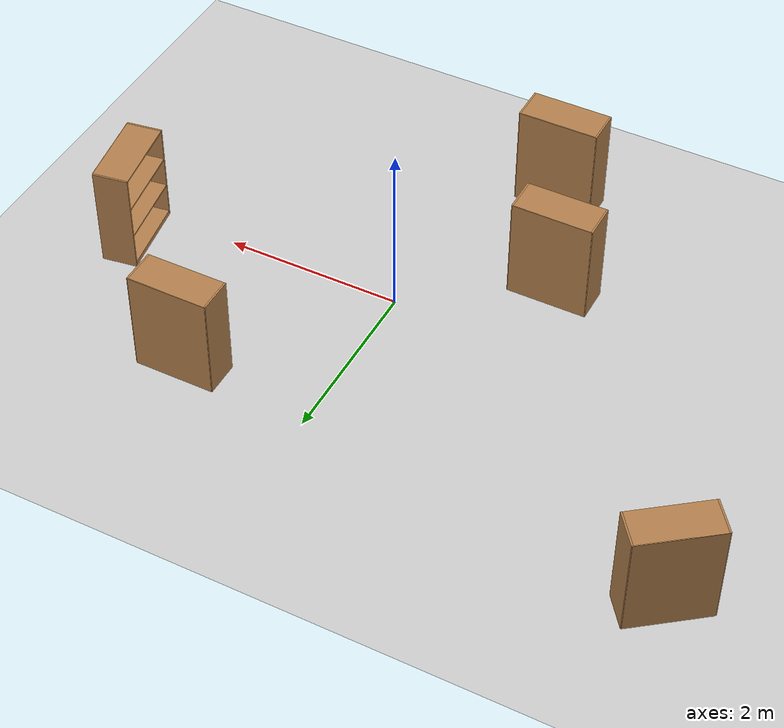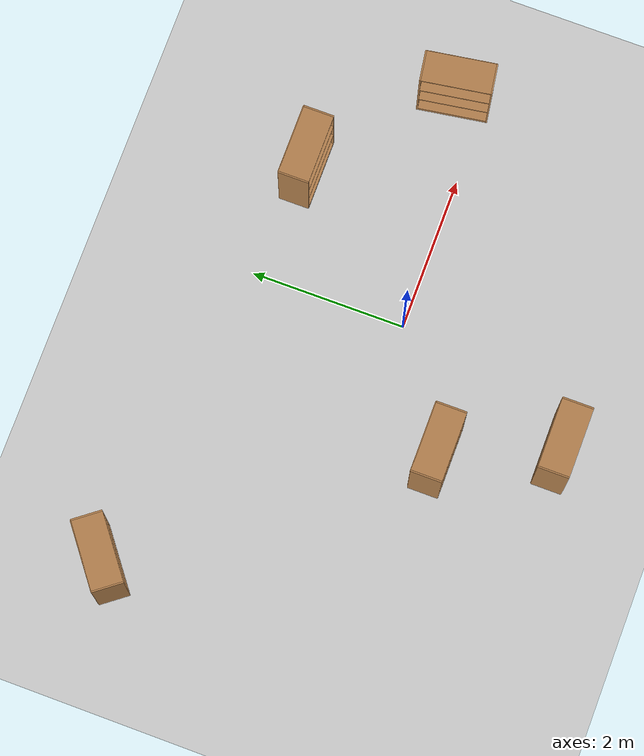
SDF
<sdf version="1.7">
 <world name="default">
  <include><uri>model://ground_plane</uri></include>
  <include><uri>model://sun</uri></include>
  <model name="bookshelf">
   <static>1</static>
   <link name="link">
    <inertial><mass>1</mass></inertial>
    <collision name="back">
     <pose>0 0.005 0.6 0 -0 0</pose>
     <geometry><box><size>0.9 0.01 1.2</size></box></geometry>
    </collision>
    <visual name="visual1">
     <pose>0 0.005 0.6 0 -0 0</pose>
     <geometry><box><size>0.9 0.01 1.2</size></box></geometry>
     <material>
      <script><uri>file://media/materials/scripts/gazebo.material</uri><name>Gazebo/Wood</name></script>
     </material>
    </visual>
    <collision name="left_side">
     <pose>0.45 -0.195 0.6 0 -0 0</pose>
     <geometry><box><size>0.02 0.4 1.2</size></box></geometry>
    </collision>
    <visual name="visual2">
     <pose>0.45 -0.195 0.6 0 -0 0</pose>
     <geometry><box><size>0.02 0.4 1.2</size></box></geometry>
     <material>
      <script><uri>file://media/materials/scripts/gazebo.material</uri><name>Gazebo/Wood</name></script>
     </material>
    </visual>
    <collision name="right_side">
     <pose>-0.45 -0.195 0.6 0 -0 0</pose>
     <geometry><box><size>0.02 0.4 1.2</size></box></geometry>
    </collision>
    <visual name="visual3">
     <pose>-0.45 -0.195 0.6 0 -0 0</pose>
     <geometry><box><size>0.02 0.4 1.2</size></box></geometry>
     <material>
      <script><uri>file://media/materials/scripts/gazebo.material</uri><name>Gazebo/Wood</name></script>
     </material>
    </visual>
    <collision name="bottom">
     <pose>0 -0.195 0.03 0 -0 0</pose>
     <geometry><box><size>0.88 0.4 0.06</size></box></geometry>
    </collision>
    <visual name="visual4">
     <pose>0 -0.195 0.03 0 -0 0</pose>
     <geometry><box><size>0.88 0.4 0.06</size></box></geometry>
     <material>
      <script><uri>file://media/materials/scripts/gazebo.material</uri><name>Gazebo/Wood</name></script>
     </material>
    </visual>
    <collision name="top">
     <pose>0 -0.195 1.19 0 -0 0</pose>
     <geometry><box><size>0.88 0.4 0.02</size></box></geometry>
    </collision>
    <visual name="visual5">
     <pose>0 -0.195 1.19 0 -0 0</pose>
     <geometry><box><size>0.88 0.4 0.02</size></box></geometry>
     <material>
      <script><uri>file://media/materials/scripts/gazebo.material</uri><name>Gazebo/Wood</name></script>
     </material>
    </visual>
    <collision name="low_shelf">
     <pose>0 -0.195 0.43 0 -0 0</pose>
     <geometry><box><size>0.88 0.4 0.02</size></box></geometry>
    </collision>
    <visual name="visual6">
     <pose>0 -0.195 0.43 0 -0 0</pose>
     <geometry><box><size>0.88 0.4 0.02</size></box></geometry>
     <material>
      <script><uri>file://media/materials/scripts/gazebo.material</uri><name>Gazebo/Wood</name></script>
     </material>
    </visual>
    <collision name="high_shelf">
     <pose>0 -0.195 0.8 0 -0 0</pose>
     <geometry><box><size>0.88 0.4 0.02</size></box></geometry>
    </collision>
    <visual name="visual7">
     <pose>0 -0.195 0.8 0 -0 0</pose>
     <geometry><box><size>0.88 0.4 0.02</size></box></geometry>
     <material>
      <script><uri>file://media/materials/scripts/gazebo.material</uri><name>Gazebo/Wood</name></script>
     </material>
    </visual>
   </link>
   <pose>3.20452 0.423142 0 0 0 -1.41662</pose>
  </model>
  <model name="bookshelf_0">
   <static>1</static>
   <link name="link">
    <inertial><mass>1</mass></inertial>
    <collision name="back">
     <pose>0 0.005 0.6 0 -0 0</pose>
     <geometry><box><size>0.9 0.01 1.2</size></box></geometry>
    </collision>
    <visual name="visual1">
     <pose>0 0.005 0.6 0 -0 0</pose>
     <geometry><box><size>0.9 0.01 1.2</size></box></geometry>
     <material>
      <script><uri>file://media/materials/scripts/gazebo.material</uri><name>Gazebo/Wood</name></script>
     </material>
    </visual>
    <collision name="left_side">
     <pose>0.45 -0.195 0.6 0 -0 0</pose>
     <geometry><box><size>0.02 0.4 1.2</size></box></geometry>
    </collision>
    <visual name="visual2">
     <pose>0.45 -0.195 0.6 0 -0 0</pose>
     <geometry><box><size>0.02 0.4 1.2</size></box></geometry>
     <material>
      <script><uri>file://media/materials/scripts/gazebo.material</uri><name>Gazebo/Wood</name></script>
     </material>
    </visual>
    <collision name="right_side">
     <pose>-0.45 -0.195 0.6 0 -0 0</pose>
     <geometry><box><size>0.02 0.4 1.2</size></box></geometry>
    </collision>
    <visual name="visual3">
     <pose>-0.45 -0.195 0.6 0 -0 0</pose>
     <geometry><box><size>0.02 0.4 1.2</size></box></geometry>
     <material>
      <script><uri>file://media/materials/scripts/gazebo.material</uri><name>Gazebo/Wood</name></script>
     </material>
    </visual>
    <collision name="bottom">
     <pose>0 -0.195 0.03 0 -0 0</pose>
     <geometry><box><size>0.88 0.4 0.06</size></box></geometry>
    </collision>
    <visual name="visual4">
     <pose>0 -0.195 0.03 0 -0 0</pose>
     <geometry><box><size>0.88 0.4 0.06</size></box></geometry>
     <material>
      <script><uri>file://media/materials/scripts/gazebo.material</uri><name>Gazebo/Wood</name></script>
     </material>
    </visual>
    <collision name="top">
     <pose>0 -0.195 1.19 0 -0 0</pose>
     <geometry><box><size>0.88 0.4 0.02</size></box></geometry>
    </collision>
    <visual name="visual5">
     <pose>0 -0.195 1.19 0 -0 0</pose>
     <geometry><box><size>0.88 0.4 0.02</size></box></geometry>
     <material>
      <script><uri>file://media/materials/scripts/gazebo.material</uri><name>Gazebo/Wood</name></script>
     </material>
    </visual>
    <collision name="low_shelf">
     <pose>0 -0.195 0.43 0 -0 0</pose>
     <geometry><box><size>0.88 0.4 0.02</size></box></geometry>
    </collision>
    <visual name="visual6">
     <pose>0 -0.195 0.43 0 -0 0</pose>
     <geometry><box><size>0.88 0.4 0.02</size></box></geometry>
     <material>
      <script><uri>file://media/materials/scripts/gazebo.material</uri><name>Gazebo/Wood</name></script>
     </material>
    </visual>
    <collision name="high_shelf">
     <pose>0 -0.195 0.8 0 -0 0</pose>
     <geometry><box><size>0.88 0.4 0.02</size></box></geometry>
    </collision>
    <visual name="visual7">
     <pose>0 -0.195 0.8 0 -0 0</pose>
     <geometry><box><size>0.88 0.4 0.02</size></box></geometry>
     <material>
      <script><uri>file://media/materials/scripts/gazebo.material</uri><name>Gazebo/Wood</name></script>
     </material>
    </visual>
   </link>
   <pose>-4.20969 2.57873 0 0 -0 0.653414</pose>
  </model>
  <model name="bookshelf_1">
   <static>1</static>
   <link name="link">
    <inertial><mass>1</mass></inertial>
    <collision name="back">
     <pose>0 0.005 0.6 0 -0 0</pose>
     <geometry><box><size>0.9 0.01 1.2</size></box></geometry>
    </collision>
    <visual name="visual1">
     <pose>0 0.005 0.6 0 -0 0</pose>
     <geometry><box><size>0.9 0.01 1.2</size></box></geometry>
     <material>
      <script><uri>file://media/materials/scripts/gazebo.material</uri><name>Gazebo/Wood</name></script>
     </material>
    </visual>
    <collision name="left_side">
     <pose>0.45 -0.195 0.6 0 -0 0</pose>
     <geometry><box><size>0.02 0.4 1.2</size></box></geometry>
    </collision>
    <visual name="visual2">
     <pose>0.45 -0.195 0.6 0 -0 0</pose>
     <geometry><box><size>0.02 0.4 1.2</size></box></geometry>
     <material>
      <script><uri>file://media/materials/scripts/gazebo.material</uri><name>Gazebo/Wood</name></script>
     </material>
    </visual>
    <collision name="right_side">
     <pose>-0.45 -0.195 0.6 0 -0 0</pose>
     <geometry><box><size>0.02 0.4 1.2</size></box></geometry>
    </collision>
    <visual name="visual3">
     <pose>-0.45 -0.195 0.6 0 -0 0</pose>
     <geometry><box><size>0.02 0.4 1.2</size></box></geometry>
     <material>
      <script><uri>file://media/materials/scripts/gazebo.material</uri><name>Gazebo/Wood</name></script>
     </material>
    </visual>
    <collision name="bottom">
     <pose>0 -0.195 0.03 0 -0 0</pose>
     <geometry><box><size>0.88 0.4 0.06</size></box></geometry>
    </collision>
    <visual name="visual4">
     <pose>0 -0.195 0.03 0 -0 0</pose>
     <geometry><box><size>0.88 0.4 0.06</size></box></geometry>
     <material>
      <script><uri>file://media/materials/scripts/gazebo.material</uri><name>Gazebo/Wood</name></script>
     </material>
    </visual>
    <collision name="top">
     <pose>0 -0.195 1.19 0 -0 0</pose>
     <geometry><box><size>0.88 0.4 0.02</size></box></geometry>
    </collision>
    <visual name="visual5">
     <pose>0 -0.195 1.19 0 -0 0</pose>
     <geometry><box><size>0.88 0.4 0.02</size></box></geometry>
     <material>
      <script><uri>file://media/materials/scripts/gazebo.material</uri><name>Gazebo/Wood</name></script>
     </material>
    </visual>
    <collision name="low_shelf">
     <pose>0 -0.195 0.43 0 -0 0</pose>
     <geometry><box><size>0.88 0.4 0.02</size></box></geometry>
    </collision>
    <visual name="visual6">
     <pose>0 -0.195 0.43 0 -0 0</pose>
     <geometry><box><size>0.88 0.4 0.02</size></box></geometry>
     <material>
      <script><uri>file://media/materials/scripts/gazebo.material</uri><name>Gazebo/Wood</name></script>
     </material>
    </visual>
    <collision name="high_shelf">
     <pose>0 -0.195 0.8 0 -0 0</pose>
     <geometry><box><size>0.88 0.4 0.02</size></box></geometry>
    </collision>
    <visual name="visual7">
     <pose>0 -0.195 0.8 0 -0 0</pose>
     <geometry><box><size>0.88 0.4 0.02</size></box></geometry>
     <material>
      <script><uri>file://media/materials/scripts/gazebo.material</uri><name>Gazebo/Wood</name></script>
     </material>
    </visual>
   </link>
   <pose>-0.858298 -2.16409 0 0 -0 0</pose>
  </model>
  <model name="bookshelf_2">
   <static>1</static>
   <link name="link">
    <inertial><mass>1</mass></inertial>
    <collision name="back">
     <pose>0 0.005 0.6 0 -0 0</pose>
     <geometry><box><size>0.9 0.01 1.2</size></box></geometry>
    </collision>
    <visual name="visual1">
     <pose>0 0.005 0.6 0 -0 0</pose>
     <geometry><box><size>0.9 0.01 1.2</size></box></geometry>
     <material>
      <script><uri>file://media/materials/scripts/gazebo.material</uri><name>Gazebo/Wood</name></script>
     </material>
    </visual>
    <collision name="left_side">
     <pose>0.45 -0.195 0.6 0 -0 0</pose>
     <geometry><box><size>0.02 0.4 1.2</size></box></geometry>
    </collision>
    <visual name="visual2">
     <pose>0.45 -0.195 0.6 0 -0 0</pose>
     <geometry><box><size>0.02 0.4 1.2</size></box></geometry>
     <material>
      <script><uri>file://media/materials/scripts/gazebo.material</uri><name>Gazebo/Wood</name></script>
     </material>
    </visual>
    <collision name="right_side">
     <pose>-0.45 -0.195 0.6 0 -0 0</pose>
     <geometry><box><size>0.02 0.4 1.2</size></box></geometry>
    </collision>
    <visual name="visual3">
     <pose>-0.45 -0.195 0.6 0 -0 0</pose>
     <geometry><box><size>0.02 0.4 1.2</size></box></geometry>
     <material>
      <script><uri>file://media/materials/scripts/gazebo.material</uri><name>Gazebo/Wood</name></script>
     </material>
    </visual>
    <collision name="bottom">
     <pose>0 -0.195 0.03 0 -0 0</pose>
     <geometry><box><size>0.88 0.4 0.06</size></box></geometry>
    </collision>
    <visual name="visual4">
     <pose>0 -0.195 0.03 0 -0 0</pose>
     <geometry><box><size>0.88 0.4 0.06</size></box></geometry>
     <material>
      <script><uri>file://media/materials/scripts/gazebo.material</uri><name>Gazebo/Wood</name></script>
     </material>
    </visual>
    <collision name="top">
     <pose>0 -0.195 1.19 0 -0 0</pose>
     <geometry><box><size>0.88 0.4 0.02</size></box></geometry>
    </collision>
    <visual name="visual5">
     <pose>0 -0.195 1.19 0 -0 0</pose>
     <geometry><box><size>0.88 0.4 0.02</size></box></geometry>
     <material>
      <script><uri>file://media/materials/scripts/gazebo.material</uri><name>Gazebo/Wood</name></script>
     </material>
    </visual>
    <collision name="low_shelf">
     <pose>0 -0.195 0.43 0 -0 0</pose>
     <geometry><box><size>0.88 0.4 0.02</size></box></geometry>
    </collision>
    <visual name="visual6">
     <pose>0 -0.195 0.43 0 -0 0</pose>
     <geometry><box><size>0.88 0.4 0.02</size></box></geometry>
     <material>
      <script><uri>file://media/materials/scripts/gazebo.material</uri><name>Gazebo/Wood</name></script>
     </material>
    </visual>
    <collision name="high_shelf">
     <pose>0 -0.195 0.8 0 -0 0</pose>
     <geometry><box><size>0.88 0.4 0.02</size></box></geometry>
    </collision>
    <visual name="visual7">
     <pose>0 -0.195 0.8 0 -0 0</pose>
     <geometry><box><size>0.88 0.4 0.02</size></box></geometry>
     <material>
      <script><uri>file://media/materials/scripts/gazebo.material</uri><name>Gazebo/Wood</name></script>
     </material>
    </visual>
   </link>
   <pose>1.49402 2.03894 0 0 -0 0</pose>
  </model>
  <model name="bookshelf_3">
   <static>1</static>
   <link name="link">
    <inertial><mass>1</mass></inertial>
    <collision name="back">
     <pose>0 0.005 0.6 0 -0 0</pose>
     <geometry><box><size>0.9 0.01 1.2</size></box></geometry>
    </collision>
    <visual name="visual1">
     <pose>0 0.005 0.6 0 -0 0</pose>
     <geometry><box><size>0.9 0.01 1.2</size></box></geometry>
     <material>
      <script><uri>file://media/materials/scripts/gazebo.material</uri><name>Gazebo/Wood</name></script>
     </material>
    </visual>
    <collision name="left_side">
     <pose>0.45 -0.195 0.6 0 -0 0</pose>
     <geometry><box><size>0.02 0.4 1.2</size></box></geometry>
    </collision>
    <visual name="visual2">
     <pose>0.45 -0.195 0.6 0 -0 0</pose>
     <geometry><box><size>0.02 0.4 1.2</size></box></geometry>
     <material>
      <script><uri>file://media/materials/scripts/gazebo.material</uri><name>Gazebo/Wood</name></script>
     </material>
    </visual>
    <collision name="right_side">
     <pose>-0.45 -0.195 0.6 0 -0 0</pose>
     <geometry><box><size>0.02 0.4 1.2</size></box></geometry>
    </collision>
    <visual name="visual3">
     <pose>-0.45 -0.195 0.6 0 -0 0</pose>
     <geometry><box><size>0.02 0.4 1.2</size></box></geometry>
     <material>
      <script><uri>file://media/materials/scripts/gazebo.material</uri><name>Gazebo/Wood</name></script>
     </material>
    </visual>
    <collision name="bottom">
     <pose>0 -0.195 0.03 0 -0 0</pose>
     <geometry><box><size>0.88 0.4 0.06</size></box></geometry>
    </collision>
    <visual name="visual4">
     <pose>0 -0.195 0.03 0 -0 0</pose>
     <geometry><box><size>0.88 0.4 0.06</size></box></geometry>
     <material>
      <script><uri>file://media/materials/scripts/gazebo.material</uri><name>Gazebo/Wood</name></script>
     </material>
    </visual>
    <collision name="top">
     <pose>0 -0.195 1.19 0 -0 0</pose>
     <geometry><box><size>0.88 0.4 0.02</size></box></geometry>
    </collision>
    <visual name="visual5">
     <pose>0 -0.195 1.19 0 -0 0</pose>
     <geometry><box><size>0.88 0.4 0.02</size></box></geometry>
     <material>
      <script><uri>file://media/materials/scripts/gazebo.material</uri><name>Gazebo/Wood</name></script>
     </material>
    </visual>
    <collision name="low_shelf">
     <pose>0 -0.195 0.43 0 -0 0</pose>
     <geometry><box><size>0.88 0.4 0.02</size></box></geometry>
    </collision>
    <visual name="visual6">
     <pose>0 -0.195 0.43 0 -0 0</pose>
     <geometry><box><size>0.88 0.4 0.02</size></box></geometry>
     <material>
      <script><uri>file://media/materials/scripts/gazebo.material</uri><name>Gazebo/Wood</name></script>
     </material>
    </visual>
    <collision name="high_shelf">
     <pose>0 -0.195 0.8 0 -0 0</pose>
     <geometry><box><size>0.88 0.4 0.02</size></box></geometry>
    </collision>
    <visual name="visual7">
     <pose>0 -0.195 0.8 0 -0 0</pose>
     <geometry><box><size>0.88 0.4 0.02</size></box></geometry>
     <material>
      <script><uri>file://media/materials/scripts/gazebo.material</uri><name>Gazebo/Wood</name></script>
     </material>
    </visual>
   </link>
   <pose>-1.43438 -0.749329 0 0 -0 0</pose>
  </model>
 </world>
</sdf>
